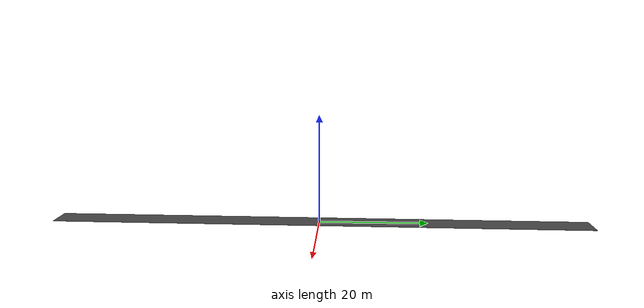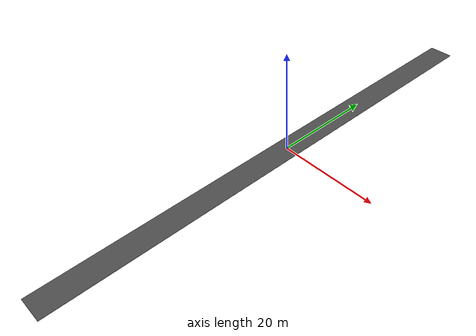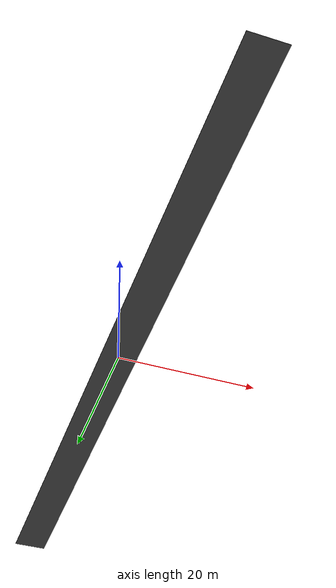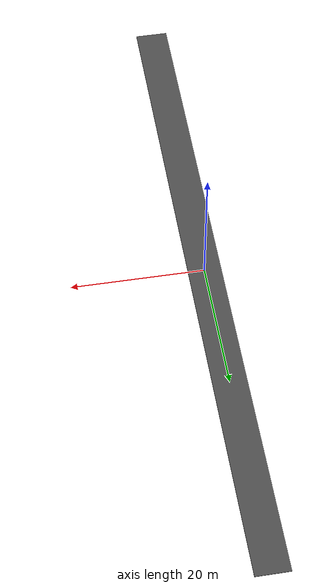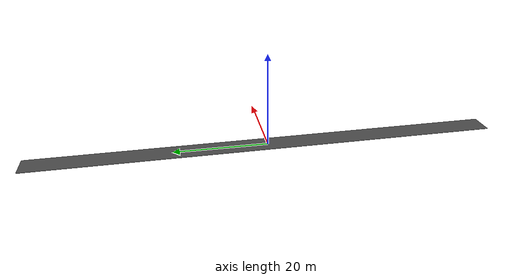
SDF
<?xml version="1.0" ?>
<sdf version="1.5">
  <model name="asphalt_road">
    <static>true</static>
    <link name="link">
      <collision name="collision">
        <geometry>
          <box>
            <size>5 100 .1</size>
          </box>
        </geometry>
      </collision>
      <visual name="visual">
        <cast_shadows>false</cast_shadows>
        <geometry>
          <box>
            <size>5 100 .1</size>
          </box>
        </geometry>
        <material>
          <script>
            <uri>model://asphalt_road/materials/scripts</uri>
            <uri>model://asphalt_road/materials/textures</uri>
            <name>vrc/asphalt</name>
          </script>
        </material>
      </visual>
    </link>
  </model>
</sdf>
